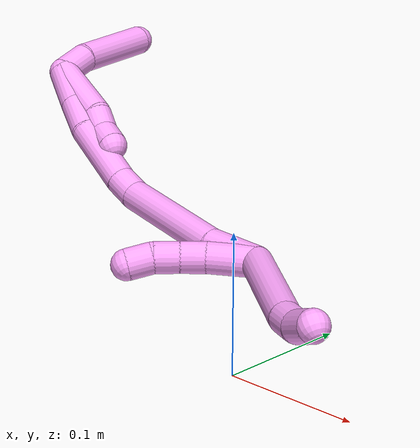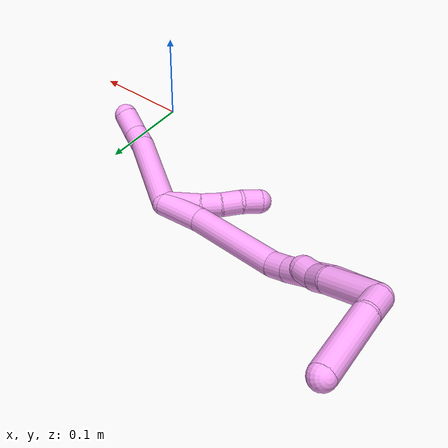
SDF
<sdf version="1.7">
 <world name="default">
  <model name="4">
   <static>0</static>
   <link name="4">
    <collision name="collision-cylinder-e_1_2_8">
     <pose>0.025281 -0.020623 -0.039375 2.65911 0.517143 1.64309</pose>
     <geometry><cylinder><radius>0.0125</radius><length>0.10227</length></cylinder></geometry>
     <surface>
      <friction><ode><mu>1.16</mu><mu2>1.16</mu2><slip1>0</slip1><slip2>0</slip2></ode></friction>
      <contact><ode><kp>1e+06</kp><kd>1</kd><max_vel>0</max_vel><min_depth>0.001</min_depth></ode></contact>
     </surface>
    </collision>
    <visual name="visual-cylinder-e_1_2_8">
     <pose>0.025281 -0.020623 -0.039375 2.65911 0.517143 1.64309</pose>
     <geometry><cylinder><radius>0.0125</radius><length>0.10227</length></cylinder></geometry>
     <material><ambient>1 0.65098 0.996078 1</ambient></material>
    </visual>
    <collision name="collision-cylinder-e_2_8_9">
     <pose>0.057538 -0.044304 -0.086562 2.76847 0.693638 2.17901</pose>
     <geometry><cylinder><radius>0.0125</radius><length>0.021823</length></cylinder></geometry>
     <surface>
      <friction><ode><mu>1.16</mu><mu2>1.16</mu2><slip1>0</slip1><slip2>0</slip2></ode></friction>
      <contact><ode><kp>1e+06</kp><kd>1</kd><max_vel>0</max_vel><min_depth>0.001</min_depth></ode></contact>
     </surface>
    </collision>
    <visual name="visual-cylinder-e_2_8_9">
     <pose>0.057538 -0.044304 -0.086562 2.76847 0.693638 2.17901</pose>
     <geometry><cylinder><radius>0.0125</radius><length>0.021823</length></cylinder></geometry>
     <material><ambient>1 0.65098 0.996078 1</ambient></material>
    </visual>
    <collision name="collision-cylinder-e_3_9_6">
     <pose>0.075388 -0.050908 -0.100456 2.61375 0.996293 2.21938</pose>
     <geometry><cylinder><radius>0.0125</radius><length>0.025907</length></cylinder></geometry>
     <surface>
      <friction><ode><mu>1.16</mu><mu2>1.16</mu2><slip1>0</slip1><slip2>0</slip2></ode></friction>
      <contact><ode><kp>1e+06</kp><kd>1</kd><max_vel>0</max_vel><min_depth>0.001</min_depth></ode></contact>
     </surface>
    </collision>
    <visual name="visual-cylinder-e_3_9_6">
     <pose>0.075388 -0.050908 -0.100456 2.61375 0.996293 2.21938</pose>
     <geometry><cylinder><radius>0.0125</radius><length>0.025907</length></cylinder></geometry>
     <material><ambient>1 0.65098 0.996078 1</ambient></material>
    </visual>
    <collision name="collision-cylinder-e_1_2_10">
     <pose>-0.011365 -0.01268 0.008434 0.983844 -0.641107 -0.35213</pose>
     <geometry><cylinder><radius>0.0125</radius><length>0.038005</length></cylinder></geometry>
     <surface>
      <friction><ode><mu>1.16</mu><mu2>1.16</mu2><slip1>0</slip1><slip2>0</slip2></ode></friction>
      <contact><ode><kp>1e+06</kp><kd>1</kd><max_vel>0</max_vel><min_depth>0.001</min_depth></ode></contact>
     </surface>
    </collision>
    <visual name="visual-cylinder-e_1_2_10">
     <pose>-0.011365 -0.01268 0.008434 0.983844 -0.641107 -0.35213</pose>
     <geometry><cylinder><radius>0.0125</radius><length>0.038005</length></cylinder></geometry>
     <material><ambient>1 0.65098 0.996078 1</ambient></material>
    </visual>
    <collision name="collision-cylinder-e_2_10_11">
     <pose>-0.028438 -0.033443 0.020172 1.18276 -0.579008 -0.394864</pose>
     <geometry><cylinder><radius>0.0125</radius><length>0.020864</length></cylinder></geometry>
     <surface>
      <friction><ode><mu>1.16</mu><mu2>1.16</mu2><slip1>0</slip1><slip2>0</slip2></ode></friction>
      <contact><ode><kp>1e+06</kp><kd>1</kd><max_vel>0</max_vel><min_depth>0.001</min_depth></ode></contact>
     </surface>
    </collision>
    <visual name="visual-cylinder-e_2_10_11">
     <pose>-0.028438 -0.033443 0.020172 1.18276 -0.579008 -0.394864</pose>
     <geometry><cylinder><radius>0.0125</radius><length>0.020864</length></cylinder></geometry>
     <material><ambient>1 0.65098 0.996078 1</ambient></material>
    </visual>
    <collision name="collision-cylinder-e_3_11_12">
     <pose>-0.038998 -0.050274 0.025947 1.29553 -0.490212 -0.374119</pose>
     <geometry><cylinder><radius>0.0125</radius><length>0.020608</length></cylinder></geometry>
     <surface>
      <friction><ode><mu>1.16</mu><mu2>1.16</mu2><slip1>0</slip1><slip2>0</slip2></ode></friction>
      <contact><ode><kp>1e+06</kp><kd>1</kd><max_vel>0</max_vel><min_depth>0.001</min_depth></ode></contact>
     </surface>
    </collision>
    <visual name="visual-cylinder-e_3_11_12">
     <pose>-0.038998 -0.050274 0.025947 1.29553 -0.490212 -0.374119</pose>
     <geometry><cylinder><radius>0.0125</radius><length>0.020608</length></cylinder></geometry>
     <material><ambient>1 0.65098 0.996078 1</ambient></material>
    </visual>
    <collision name="collision-cylinder-e_4_12_5">
     <pose>-0.049898 -0.067306 0.028727 1.53346 -0.630346 -0.608666</pose>
     <geometry><cylinder><radius>0.0125</radius><length>0.020523</length></cylinder></geometry>
     <surface>
      <friction><ode><mu>1.16</mu><mu2>1.16</mu2><slip1>0</slip1><slip2>0</slip2></ode></friction>
      <contact><ode><kp>1e+06</kp><kd>1</kd><max_vel>0</max_vel><min_depth>0.001</min_depth></ode></contact>
     </surface>
    </collision>
    <visual name="visual-cylinder-e_4_12_5">
     <pose>-0.049898 -0.067306 0.028727 1.53346 -0.630346 -0.608666</pose>
     <geometry><cylinder><radius>0.0125</radius><length>0.020523</length></cylinder></geometry>
     <material><ambient>1 0.65098 0.996078 1</ambient></material>
    </visual>
    <collision name="collision-cylinder-e_1_2_13">
     <pose>-0.014569 -0.005178 0.01686 0.297959 -0.690406 -0.107842</pose>
     <geometry><cylinder><radius>0.0125</radius><length>0.045753</length></cylinder></geometry>
     <surface>
      <friction><ode><mu>1.16</mu><mu2>1.16</mu2><slip1>0</slip1><slip2>0</slip2></ode></friction>
      <contact><ode><kp>1e+06</kp><kd>1</kd><max_vel>0</max_vel><min_depth>0.001</min_depth></ode></contact>
     </surface>
    </collision>
    <visual name="visual-cylinder-e_1_2_13">
     <pose>-0.014569 -0.005178 0.01686 0.297959 -0.690406 -0.107842</pose>
     <geometry><cylinder><radius>0.0125</radius><length>0.045753</length></cylinder></geometry>
     <material><ambient>1 0.65098 0.996078 1</ambient></material>
    </visual>
    <collision name="collision-cylinder-e_2_13_14">
     <pose>-0.058378 -0.014116 0.075451 0.089868 -0.609295 -0.028275</pose>
     <geometry><cylinder><radius>0.0125</radius><length>0.102188</length></cylinder></geometry>
     <surface>
      <friction><ode><mu>1.16</mu><mu2>1.16</mu2><slip1>0</slip1><slip2>0</slip2></ode></friction>
      <contact><ode><kp>1e+06</kp><kd>1</kd><max_vel>0</max_vel><min_depth>0.001</min_depth></ode></contact>
     </surface>
    </collision>
    <visual name="visual-cylinder-e_2_13_14">
     <pose>-0.058378 -0.014116 0.075451 0.089868 -0.609295 -0.028275</pose>
     <geometry><cylinder><radius>0.0125</radius><length>0.102188</length></cylinder></geometry>
     <material><ambient>1 0.65098 0.996078 1</ambient></material>
    </visual>
    <collision name="collision-cylinder-e_3_14_15">
     <pose>-0.091461 -0.019455 0.127144 0.157174 -0.363987 -0.028982</pose>
     <geometry><cylinder><radius>0.0125</radius><length>0.021588</length></cylinder></geometry>
     <surface>
      <friction><ode><mu>1.16</mu><mu2>1.16</mu2><slip1>0</slip1><slip2>0</slip2></ode></friction>
      <contact><ode><kp>1e+06</kp><kd>1</kd><max_vel>0</max_vel><min_depth>0.001</min_depth></ode></contact>
     </surface>
    </collision>
    <visual name="visual-cylinder-e_3_14_15">
     <pose>-0.091461 -0.019455 0.127144 0.157174 -0.363987 -0.028982</pose>
     <geometry><cylinder><radius>0.0125</radius><length>0.021588</length></cylinder></geometry>
     <material><ambient>1 0.65098 0.996078 1</ambient></material>
    </visual>
    <collision name="collision-cylinder-e_4_15_16">
     <pose>-0.10201 -0.024824 0.166543 0.128035 -0.222214 -0.014304</pose>
     <geometry><cylinder><radius>0.0125</radius><length>0.060856</length></cylinder></geometry>
     <surface>
      <friction><ode><mu>1.16</mu><mu2>1.16</mu2><slip1>0</slip1><slip2>0</slip2></ode></friction>
      <contact><ode><kp>1e+06</kp><kd>1</kd><max_vel>0</max_vel><min_depth>0.001</min_depth></ode></contact>
     </surface>
    </collision>
    <visual name="visual-cylinder-e_4_15_16">
     <pose>-0.10201 -0.024824 0.166543 0.128035 -0.222214 -0.014304</pose>
     <geometry><cylinder><radius>0.0125</radius><length>0.060856</length></cylinder></geometry>
     <material><ambient>1 0.65098 0.996078 1</ambient></material>
    </visual>
    <collision name="collision-cylinder-e_5_16_17">
     <pose>-0.111107 -0.02772 0.211246 -0.058491 -0.155086 0.004546</pose>
     <geometry><cylinder><radius>0.0125</radius><length>0.030954</length></cylinder></geometry>
     <surface>
      <friction><ode><mu>1.16</mu><mu2>1.16</mu2><slip1>0</slip1><slip2>0</slip2></ode></friction>
      <contact><ode><kp>1e+06</kp><kd>1</kd><max_vel>0</max_vel><min_depth>0.001</min_depth></ode></contact>
     </surface>
    </collision>
    <visual name="visual-cylinder-e_5_16_17">
     <pose>-0.111107 -0.02772 0.211246 -0.058491 -0.155086 0.004546</pose>
     <geometry><cylinder><radius>0.0125</radius><length>0.030954</length></cylinder></geometry>
     <material><ambient>1 0.65098 0.996078 1</ambient></material>
    </visual>
    <collision name="collision-cylinder-e_6_17_1">
     <pose>-0.116016 -0.025536 0.245633 -0.067327 -0.130648 0.004406</pose>
     <geometry><cylinder><radius>0.0125</radius><length>0.038661</length></cylinder></geometry>
     <surface>
      <friction><ode><mu>1.16</mu><mu2>1.16</mu2><slip1>0</slip1><slip2>0</slip2></ode></friction>
      <contact><ode><kp>1e+06</kp><kd>1</kd><max_vel>0</max_vel><min_depth>0.001</min_depth></ode></contact>
     </surface>
    </collision>
    <visual name="visual-cylinder-e_6_17_1">
     <pose>-0.116016 -0.025536 0.245633 -0.067327 -0.130648 0.004406</pose>
     <geometry><cylinder><radius>0.0125</radius><length>0.038661</length></cylinder></geometry>
     <material><ambient>1 0.65098 0.996078 1</ambient></material>
    </visual>
    <collision name="collision-cylinder-e_1_1_18">
     <pose>-0.11638 -0.012676 0.272375 -0.988453 0.154222 -0.083217</pose>
     <geometry><cylinder><radius>0.0125</radius><length>0.028041</length></cylinder></geometry>
     <surface>
      <friction><ode><mu>1.16</mu><mu2>1.16</mu2><slip1>0</slip1><slip2>0</slip2></ode></friction>
      <contact><ode><kp>1e+06</kp><kd>1</kd><max_vel>0</max_vel><min_depth>0.001</min_depth></ode></contact>
     </surface>
    </collision>
    <visual name="visual-cylinder-e_1_1_18">
     <pose>-0.11638 -0.012676 0.272375 -0.988453 0.154222 -0.083217</pose>
     <geometry><cylinder><radius>0.0125</radius><length>0.028041</length></cylinder></geometry>
     <material><ambient>1 0.65098 0.996078 1</ambient></material>
    </visual>
    <collision name="collision-cylinder-e_2_18_4">
     <pose>-0.113624 0.032056 0.293939 -1.17276 0.016754 -0.01113</pose>
     <geometry><cylinder><radius>0.0125</radius><length>0.071959</length></cylinder></geometry>
     <surface>
      <friction><ode><mu>1.16</mu><mu2>1.16</mu2><slip1>0</slip1><slip2>0</slip2></ode></friction>
      <contact><ode><kp>1e+06</kp><kd>1</kd><max_vel>0</max_vel><min_depth>0.001</min_depth></ode></contact>
     </surface>
    </collision>
    <visual name="visual-cylinder-e_2_18_4">
     <pose>-0.113624 0.032056 0.293939 -1.17276 0.016754 -0.01113</pose>
     <geometry><cylinder><radius>0.0125</radius><length>0.071959</length></cylinder></geometry>
     <material><ambient>1 0.65098 0.996078 1</ambient></material>
    </visual>
    <collision name="collision-cylinder-e_1_1_19">
     <pose>-0.10959 -0.021691 0.236377 -3.05177 0.304148 -2.5711</pose>
     <geometry><cylinder><radius>0.0125</radius><length>0.059729</length></cylinder></geometry>
     <surface>
      <friction><ode><mu>1.16</mu><mu2>1.16</mu2><slip1>0</slip1><slip2>0</slip2></ode></friction>
      <contact><ode><kp>1e+06</kp><kd>1</kd><max_vel>0</max_vel><min_depth>0.001</min_depth></ode></contact>
     </surface>
    </collision>
    <visual name="visual-cylinder-e_1_1_19">
     <pose>-0.10959 -0.021691 0.236377 -3.05177 0.304148 -2.5711</pose>
     <geometry><cylinder><radius>0.0125</radius><length>0.059729</length></cylinder></geometry>
     <material><ambient>1 0.65098 0.996078 1</ambient></material>
    </visual>
    <collision name="collision-cylinder-e_2_19_20">
     <pose>-0.100229 -0.019299 0.197906 3.12537 0.041285 2.39269</pose>
     <geometry><cylinder><radius>0.0125</radius><length>0.020205</length></cylinder></geometry>
     <surface>
      <friction><ode><mu>1.16</mu><mu2>1.16</mu2><slip1>0</slip1><slip2>0</slip2></ode></friction>
      <contact><ode><kp>1e+06</kp><kd>1</kd><max_vel>0</max_vel><min_depth>0.001</min_depth></ode></contact>
     </surface>
    </collision>
    <visual name="visual-cylinder-e_2_19_20">
     <pose>-0.100229 -0.019299 0.197906 3.12537 0.041285 2.39269</pose>
     <geometry><cylinder><radius>0.0125</radius><length>0.020205</length></cylinder></geometry>
     <material><ambient>1 0.65098 0.996078 1</ambient></material>
    </visual>
    <collision name="collision-cylinder-e_3_20_3">
     <pose>-0.096049 -0.020194 0.178541 3.06286 0.384563 2.74236</pose>
     <geometry><cylinder><radius>0.0125</radius><length>0.020066</length></cylinder></geometry>
     <surface>
      <friction><ode><mu>1.16</mu><mu2>1.16</mu2><slip1>0</slip1><slip2>0</slip2></ode></friction>
      <contact><ode><kp>1e+06</kp><kd>1</kd><max_vel>0</max_vel><min_depth>0.001</min_depth></ode></contact>
     </surface>
    </collision>
    <visual name="visual-cylinder-e_3_20_3">
     <pose>-0.096049 -0.020194 0.178541 3.06286 0.384563 2.74236</pose>
     <geometry><cylinder><radius>0.0125</radius><length>0.020066</length></cylinder></geometry>
     <material><ambient>1 0.65098 0.996078 1</ambient></material>
    </visual>
    <collision name="collision-sphere-3">
     <pose>-0.092285 -0.020925 0.16927 0 -0 0</pose>
     <geometry><sphere><radius>0.0125</radius></sphere></geometry>
     <surface>
      <friction><ode><mu>1.16</mu><mu2>1.16</mu2><slip1>0</slip1><slip2>0</slip2></ode></friction>
      <contact><ode><kp>1e+06</kp><kd>1</kd><max_vel>0</max_vel><min_depth>0.001</min_depth></ode></contact>
     </surface>
    </collision>
    <visual name="visual-sphere-3">
     <pose>-0.092285 -0.020925 0.16927 0 -0 0</pose>
     <geometry><sphere><radius>0.0125</radius></sphere></geometry>
     <material><ambient>1 0.65098 0.996078 1</ambient></material>
    </visual>
    <collision name="collision-sphere-20">
     <pose>-0.099812 -0.019463 0.187813 0 -0 0</pose>
     <geometry><sphere><radius>0.0125</radius></sphere></geometry>
     <surface>
      <friction><ode><mu>1.16</mu><mu2>1.16</mu2><slip1>0</slip1><slip2>0</slip2></ode></friction>
      <contact><ode><kp>1e+06</kp><kd>1</kd><max_vel>0</max_vel><min_depth>0.001</min_depth></ode></contact>
     </surface>
    </collision>
    <visual name="visual-sphere-20">
     <pose>-0.099812 -0.019463 0.187813 0 -0 0</pose>
     <geometry><sphere><radius>0.0125</radius></sphere></geometry>
     <material><ambient>1 0.65098 0.996078 1</ambient></material>
    </visual>
    <collision name="collision-sphere-19">
     <pose>-0.100646 -0.019135 0.207998 0 -0 0</pose>
     <geometry><sphere><radius>0.0125</radius></sphere></geometry>
     <surface>
      <friction><ode><mu>1.16</mu><mu2>1.16</mu2><slip1>0</slip1><slip2>0</slip2></ode></friction>
      <contact><ode><kp>1e+06</kp><kd>1</kd><max_vel>0</max_vel><min_depth>0.001</min_depth></ode></contact>
     </surface>
    </collision>
    <visual name="visual-sphere-19">
     <pose>-0.100646 -0.019135 0.207998 0 -0 0</pose>
     <geometry><sphere><radius>0.0125</radius></sphere></geometry>
     <material><ambient>1 0.65098 0.996078 1</ambient></material>
    </visual>
    <collision name="collision-sphere-11">
     <pose>-0.034147 -0.041525 0.023476 0 -0 0</pose>
     <geometry><sphere><radius>0.0125</radius></sphere></geometry>
     <surface>
      <friction><ode><mu>1.16</mu><mu2>1.16</mu2><slip1>0</slip1><slip2>0</slip2></ode></friction>
      <contact><ode><kp>1e+06</kp><kd>1</kd><max_vel>0</max_vel><min_depth>0.001</min_depth></ode></contact>
     </surface>
    </collision>
    <visual name="visual-sphere-11">
     <pose>-0.034147 -0.041525 0.023476 0 -0 0</pose>
     <geometry><sphere><radius>0.0125</radius></sphere></geometry>
     <material><ambient>1 0.65098 0.996078 1</ambient></material>
    </visual>
    <collision name="collision-sphere-10">
     <pose>-0.02273 -0.02536 0.016869 0 -0 0</pose>
     <geometry><sphere><radius>0.0125</radius></sphere></geometry>
     <surface>
      <friction><ode><mu>1.16</mu><mu2>1.16</mu2><slip1>0</slip1><slip2>0</slip2></ode></friction>
      <contact><ode><kp>1e+06</kp><kd>1</kd><max_vel>0</max_vel><min_depth>0.001</min_depth></ode></contact>
     </surface>
    </collision>
    <visual name="visual-sphere-10">
     <pose>-0.02273 -0.02536 0.016869 0 -0 0</pose>
     <geometry><sphere><radius>0.0125</radius></sphere></geometry>
     <material><ambient>1 0.65098 0.996078 1</ambient></material>
    </visual>
    <collision name="collision-sphere-6">
     <pose>0.086262 -0.054454 -0.106537 0 -0 0</pose>
     <geometry><sphere><radius>0.0125</radius></sphere></geometry>
     <surface>
      <friction><ode><mu>1.16</mu><mu2>1.16</mu2><slip1>0</slip1><slip2>0</slip2></ode></friction>
      <contact><ode><kp>1e+06</kp><kd>1</kd><max_vel>0</max_vel><min_depth>0.001</min_depth></ode></contact>
     </surface>
    </collision>
    <visual name="visual-sphere-6">
     <pose>0.086262 -0.054454 -0.106537 0 -0 0</pose>
     <geometry><sphere><radius>0.0125</radius></sphere></geometry>
     <material><ambient>1 0.65098 0.996078 1</ambient></material>
    </visual>
    <collision name="collision-sphere-9">
     <pose>0.064515 -0.047363 -0.094375 0 -0 0</pose>
     <geometry><sphere><radius>0.0125</radius></sphere></geometry>
     <surface>
      <friction><ode><mu>1.16</mu><mu2>1.16</mu2><slip1>0</slip1><slip2>0</slip2></ode></friction>
      <contact><ode><kp>1e+06</kp><kd>1</kd><max_vel>0</max_vel><min_depth>0.001</min_depth></ode></contact>
     </surface>
    </collision>
    <visual name="visual-sphere-9">
     <pose>0.064515 -0.047363 -0.094375 0 -0 0</pose>
     <geometry><sphere><radius>0.0125</radius></sphere></geometry>
     <material><ambient>1 0.65098 0.996078 1</ambient></material>
    </visual>
    <collision name="collision-sphere-2">
     <geometry><sphere><radius>0.0125</radius></sphere></geometry>
     <surface>
      <friction><ode><mu>1.16</mu><mu2>1.16</mu2><slip1>0</slip1><slip2>0</slip2></ode></friction>
      <contact><ode><kp>1e+06</kp><kd>1</kd><max_vel>0</max_vel><min_depth>0.001</min_depth></ode></contact>
     </surface>
    </collision>
    <visual name="visual-sphere-2">
     <geometry><sphere><radius>0.0125</radius></sphere></geometry>
     <material><ambient>1 0.65098 0.996078 1</ambient></material>
    </visual>
    <collision name="collision-sphere-8">
     <pose>0.050562 -0.041246 -0.078749 0 -0 0</pose>
     <geometry><sphere><radius>0.0125</radius></sphere></geometry>
     <surface>
      <friction><ode><mu>1.16</mu><mu2>1.16</mu2><slip1>0</slip1><slip2>0</slip2></ode></friction>
      <contact><ode><kp>1e+06</kp><kd>1</kd><max_vel>0</max_vel><min_depth>0.001</min_depth></ode></contact>
     </surface>
    </collision>
    <visual name="visual-sphere-8">
     <pose>0.050562 -0.041246 -0.078749 0 -0 0</pose>
     <geometry><sphere><radius>0.0125</radius></sphere></geometry>
     <material><ambient>1 0.65098 0.996078 1</ambient></material>
    </visual>
    <collision name="collision-sphere-12">
     <pose>-0.043849 -0.059022 0.028418 0 -0 0</pose>
     <geometry><sphere><radius>0.0125</radius></sphere></geometry>
     <surface>
      <friction><ode><mu>1.16</mu><mu2>1.16</mu2><slip1>0</slip1><slip2>0</slip2></ode></friction>
      <contact><ode><kp>1e+06</kp><kd>1</kd><max_vel>0</max_vel><min_depth>0.001</min_depth></ode></contact>
     </surface>
    </collision>
    <visual name="visual-sphere-12">
     <pose>-0.043849 -0.059022 0.028418 0 -0 0</pose>
     <geometry><sphere><radius>0.0125</radius></sphere></geometry>
     <material><ambient>1 0.65098 0.996078 1</ambient></material>
    </visual>
    <collision name="collision-sphere-5">
     <pose>-0.055946 -0.07559 0.029037 0 -0 0</pose>
     <geometry><sphere><radius>0.0125</radius></sphere></geometry>
     <surface>
      <friction><ode><mu>1.16</mu><mu2>1.16</mu2><slip1>0</slip1><slip2>0</slip2></ode></friction>
      <contact><ode><kp>1e+06</kp><kd>1</kd><max_vel>0</max_vel><min_depth>0.001</min_depth></ode></contact>
     </surface>
    </collision>
    <visual name="visual-sphere-5">
     <pose>-0.055946 -0.07559 0.029037 0 -0 0</pose>
     <geometry><sphere><radius>0.0125</radius></sphere></geometry>
     <material><ambient>1 0.65098 0.996078 1</ambient></material>
    </visual>
    <collision name="collision-sphere-13">
     <pose>-0.029138 -0.010356 0.033721 0 -0 0</pose>
     <geometry><sphere><radius>0.0125</radius></sphere></geometry>
     <surface>
      <friction><ode><mu>1.16</mu><mu2>1.16</mu2><slip1>0</slip1><slip2>0</slip2></ode></friction>
      <contact><ode><kp>1e+06</kp><kd>1</kd><max_vel>0</max_vel><min_depth>0.001</min_depth></ode></contact>
     </surface>
    </collision>
    <visual name="visual-sphere-13">
     <pose>-0.029138 -0.010356 0.033721 0 -0 0</pose>
     <geometry><sphere><radius>0.0125</radius></sphere></geometry>
     <material><ambient>1 0.65098 0.996078 1</ambient></material>
    </visual>
    <collision name="collision-sphere-14">
     <pose>-0.087618 -0.017876 0.117181 0 -0 0</pose>
     <geometry><sphere><radius>0.0125</radius></sphere></geometry>
     <surface>
      <friction><ode><mu>1.16</mu><mu2>1.16</mu2><slip1>0</slip1><slip2>0</slip2></ode></friction>
      <contact><ode><kp>1e+06</kp><kd>1</kd><max_vel>0</max_vel><min_depth>0.001</min_depth></ode></contact>
     </surface>
    </collision>
    <visual name="visual-sphere-14">
     <pose>-0.087618 -0.017876 0.117181 0 -0 0</pose>
     <geometry><sphere><radius>0.0125</radius></sphere></geometry>
     <material><ambient>1 0.65098 0.996078 1</ambient></material>
    </visual>
    <collision name="collision-sphere-15">
     <pose>-0.095304 -0.021034 0.137106 0 -0 0</pose>
     <geometry><sphere><radius>0.0125</radius></sphere></geometry>
     <surface>
      <friction><ode><mu>1.16</mu><mu2>1.16</mu2><slip1>0</slip1><slip2>0</slip2></ode></friction>
      <contact><ode><kp>1e+06</kp><kd>1</kd><max_vel>0</max_vel><min_depth>0.001</min_depth></ode></contact>
     </surface>
    </collision>
    <visual name="visual-sphere-15">
     <pose>-0.095304 -0.021034 0.137106 0 -0 0</pose>
     <geometry><sphere><radius>0.0125</radius></sphere></geometry>
     <material><ambient>1 0.65098 0.996078 1</ambient></material>
    </visual>
    <collision name="collision-sphere-16">
     <pose>-0.108716 -0.028613 0.195981 0 -0 0</pose>
     <geometry><sphere><radius>0.0125</radius></sphere></geometry>
     <surface>
      <friction><ode><mu>1.16</mu><mu2>1.16</mu2><slip1>0</slip1><slip2>0</slip2></ode></friction>
      <contact><ode><kp>1e+06</kp><kd>1</kd><max_vel>0</max_vel><min_depth>0.001</min_depth></ode></contact>
     </surface>
    </collision>
    <visual name="visual-sphere-16">
     <pose>-0.108716 -0.028613 0.195981 0 -0 0</pose>
     <geometry><sphere><radius>0.0125</radius></sphere></geometry>
     <material><ambient>1 0.65098 0.996078 1</ambient></material>
    </visual>
    <collision name="collision-sphere-17">
     <pose>-0.113497 -0.026826 0.226511 0 -0 0</pose>
     <geometry><sphere><radius>0.0125</radius></sphere></geometry>
     <surface>
      <friction><ode><mu>1.16</mu><mu2>1.16</mu2><slip1>0</slip1><slip2>0</slip2></ode></friction>
      <contact><ode><kp>1e+06</kp><kd>1</kd><max_vel>0</max_vel><min_depth>0.001</min_depth></ode></contact>
     </surface>
    </collision>
    <visual name="visual-sphere-17">
     <pose>-0.113497 -0.026826 0.226511 0 -0 0</pose>
     <geometry><sphere><radius>0.0125</radius></sphere></geometry>
     <material><ambient>1 0.65098 0.996078 1</ambient></material>
    </visual>
    <collision name="collision-sphere-1">
     <pose>-0.118534 -0.024247 0.264756 0 -0 0</pose>
     <geometry><sphere><radius>0.0125</radius></sphere></geometry>
     <surface>
      <friction><ode><mu>1.16</mu><mu2>1.16</mu2><slip1>0</slip1><slip2>0</slip2></ode></friction>
      <contact><ode><kp>1e+06</kp><kd>1</kd><max_vel>0</max_vel><min_depth>0.001</min_depth></ode></contact>
     </surface>
    </collision>
    <visual name="visual-sphere-1">
     <pose>-0.118534 -0.024247 0.264756 0 -0 0</pose>
     <geometry><sphere><radius>0.0125</radius></sphere></geometry>
     <material><ambient>1 0.65098 0.996078 1</ambient></material>
    </visual>
    <collision name="collision-sphere-18">
     <pose>-0.114227 -0.001106 0.279995 0 -0 0</pose>
     <geometry><sphere><radius>0.0125</radius></sphere></geometry>
     <surface>
      <friction><ode><mu>1.16</mu><mu2>1.16</mu2><slip1>0</slip1><slip2>0</slip2></ode></friction>
      <contact><ode><kp>1e+06</kp><kd>1</kd><max_vel>0</max_vel><min_depth>0.001</min_depth></ode></contact>
     </surface>
    </collision>
    <visual name="visual-sphere-18">
     <pose>-0.114227 -0.001106 0.279995 0 -0 0</pose>
     <geometry><sphere><radius>0.0125</radius></sphere></geometry>
     <material><ambient>1 0.65098 0.996078 1</ambient></material>
    </visual>
    <collision name="collision-sphere-4">
     <pose>-0.113021 0.065219 0.307883 0 -0 0</pose>
     <geometry><sphere><radius>0.0125</radius></sphere></geometry>
     <surface>
      <friction><ode><mu>1.16</mu><mu2>1.16</mu2><slip1>0</slip1><slip2>0</slip2></ode></friction>
      <contact><ode><kp>1e+06</kp><kd>1</kd><max_vel>0</max_vel><min_depth>0.001</min_depth></ode></contact>
     </surface>
    </collision>
    <visual name="visual-sphere-4">
     <pose>-0.113021 0.065219 0.307883 0 -0 0</pose>
     <geometry><sphere><radius>0.0125</radius></sphere></geometry>
     <material><ambient>1 0.65098 0.996078 1</ambient></material>
    </visual>
    <inertial>
     <pose>-0.055647 -0.018116 0.108311 0 -0 0</pose>
     <mass>0.75</mass>
     <inertia>
      <ixx>0.000197</ixx>
      <ixy>0</ixy>
      <ixz>0</ixz>
      <iyy>0.000268</iyy>
      <iyz>0</iyz>
      <izz>4.8e-05</izz>
     </inertia>
    </inertial>
   </link>
   <pose>-0.10605 0.139574 0.015375 -0.358842 -0.815261 0.073178</pose>
  </model>
 </world>
</sdf>
